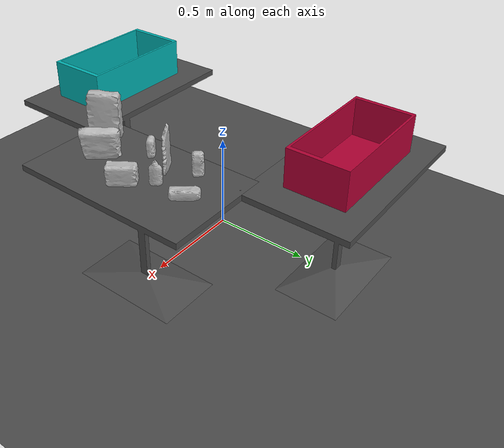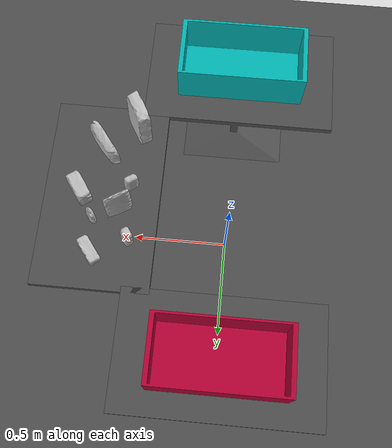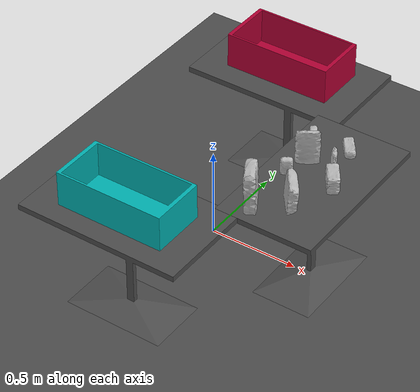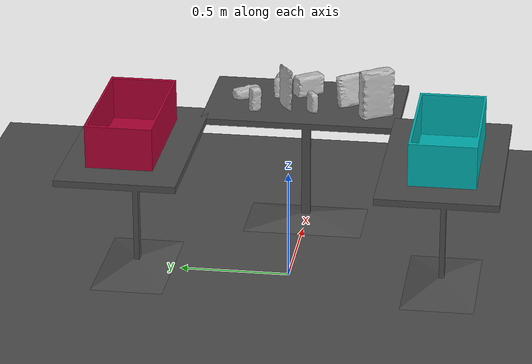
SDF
<sdf version="1.6">
 <world name="default">
  <light name="sun" type="directional">
   <pose>0 0 10 0 -0 0</pose>
   <diffuse>0.8 0.8 0.8 1</diffuse>
   <specular>0.2 0.2 0.2 1</specular>
   <attenuation>
    <range>1000</range>
    <constant>0.9</constant>
    <linear>0.01</linear>
    <quadratic>0.001</quadratic>
   </attenuation>
   <direction>-0.5 0.1 -0.9</direction>
  </light>
  <model name="ground_plane">
   <static>1</static>
   <link name="link">
    <collision name="collision">
     <geometry><plane><normal>0 0 1</normal><size>100 100</size></plane></geometry>
     <surface><friction><ode><mu>100</mu><mu2>50</mu2></ode></friction></surface>
    </collision>
    <visual name="visual">
     <cast_shadows>0</cast_shadows>
     <geometry><plane><normal>0 0 1</normal><size>100 100</size></plane></geometry>
     <material>
      <script><uri>file://media/materials/scripts/gazebo.material</uri><name>Gazebo/DarkGrey</name></script>
     </material>
    </visual>
   </link>
  </model>
  <gravity>0 0 -9.8</gravity>
  <magnetic_field>6e-06 2.3e-05 -4.2e-05</magnetic_field>
  <atmosphere type="adiabatic"/>
  <physics name="default_physics" default="0" type="ode">
   <max_step_size>0.001</max_step_size>
   <real_time_factor>1</real_time_factor>
   <real_time_update_rate>1000</real_time_update_rate>
  </physics>
  <scene><ambient>0.4 0.4 0.4 1</ambient><background>0.7 0.7 0.7 1</background><shadows>1</shadows></scene>
  <spherical_coordinates>
   <surface_model>EARTH_WGS84</surface_model>
   <latitude_deg>0</latitude_deg>
   <longitude_deg>0</longitude_deg>
   <elevation>0</elevation>
   <heading_deg>0</heading_deg>
  </spherical_coordinates>
  <model name="dropbox">
   <link name="link_0">
    <pose>0 -0 0 0 0 -1.56873</pose>
    <inertial>
     <mass>1</mass>
     <inertia>
      <ixx>0.166667</ixx>
      <ixy>0</ixy>
      <ixz>0</ixz>
      <iyy>0.166667</iyy>
      <iyz>0</iyz>
      <izz>0.166667</izz>
     </inertia>
    </inertial>
    <visual name="visual">
     <geometry><mesh><uri>model://dropbox/meshes/dropbox.dae</uri><scale>1 1 1</scale></mesh></geometry>
     <material>
      <lighting>1</lighting>
      <script><uri>file://media/materials/scripts/gazebo.material</uri><name>Gazebo/Grey</name></script>
      <ambient>0 0.3 0.3 1</ambient>
      <diffuse>0 0.7 0.7 1</diffuse>
      <specular>0 0.01 0.01 1</specular>
      <emissive>0 0 0 1</emissive>
     </material>
    </visual>
    <collision name="collision">
     <geometry><mesh><uri>model://dropbox/meshes/dropbox.dae</uri><scale>1 1 1</scale></mesh></geometry>
     <surface>
      <friction>
       <ode><mu>1</mu><mu2>1</mu2><fdir1>0 0 0</fdir1><slip1>0</slip1><slip2>0</slip2></ode>
       <torsional>
        <coefficient>1</coefficient>
        <patch_radius>0</patch_radius>
        <surface_radius>0</surface_radius>
        <use_patch_radius>1</use_patch_radius>
        <ode><slip>0</slip></ode>
       </torsional>
      </friction>
      <bounce><restitution_coefficient>0</restitution_coefficient><threshold>1e+06</threshold></bounce>
      <contact>
       <collide_without_contact>0</collide_without_contact>
       <collide_without_contact_bitmask>1</collide_without_contact_bitmask>
       <collide_bitmask>1</collide_bitmask>
       <ode>
        <soft_cfm>0</soft_cfm>
        <soft_erp>0.2</soft_erp>
        <kp>1e+13</kp>
        <kd>1</kd>
        <max_vel>0.01</max_vel>
        <min_depth>0</min_depth>
       </ode>
       <bullet>
        <split_impulse>1</split_impulse>
        <split_impulse_penetration_threshold>-0.01</split_impulse_penetration_threshold>
        <soft_cfm>0</soft_cfm>
        <soft_erp>0.2</soft_erp>
        <kp>1e+13</kp>
        <kd>1</kd>
       </bullet>
      </contact>
     </surface>
    </collision>
   </link>
   <static>1</static>
   <pose>0 -0.71 0.605 0 -0 0</pose>
  </model>
  <model name="dropbox_clone">
   <link name="link_0">
    <pose>0 -0 0 0 0 -1.56873</pose>
    <inertial>
     <mass>1</mass>
     <inertia>
      <ixx>0.166667</ixx>
      <ixy>0</ixy>
      <ixz>0</ixz>
      <iyy>0.166667</iyy>
      <iyz>0</iyz>
      <izz>0.166667</izz>
     </inertia>
    </inertial>
    <visual name="visual">
     <geometry><mesh><uri>model://dropbox/meshes/dropbox.dae</uri><scale>1 1 1</scale></mesh></geometry>
     <material>
      <lighting>1</lighting>
      <script><uri>file://media/materials/scripts/gazebo.material</uri><name>Gazebo/Grey</name></script>
      <ambient>0.3 0 0.1 1</ambient>
      <diffuse>0.7 0 0.2 1</diffuse>
      <specular>0.01 0 0.01 1</specular>
      <emissive>0 0 0 1</emissive>
     </material>
    </visual>
    <collision name="collision">
     <geometry><mesh><uri>model://dropbox/meshes/dropbox.dae</uri><scale>1 1 1</scale></mesh></geometry>
     <surface>
      <friction>
       <ode><mu>1</mu><mu2>1</mu2><fdir1>0 0 0</fdir1><slip1>0</slip1><slip2>0</slip2></ode>
       <torsional>
        <coefficient>1</coefficient>
        <patch_radius>0</patch_radius>
        <surface_radius>0</surface_radius>
        <use_patch_radius>1</use_patch_radius>
        <ode><slip>0</slip></ode>
       </torsional>
      </friction>
      <bounce><restitution_coefficient>0</restitution_coefficient><threshold>1e+06</threshold></bounce>
      <contact>
       <collide_without_contact>0</collide_without_contact>
       <collide_without_contact_bitmask>1</collide_without_contact_bitmask>
       <collide_bitmask>1</collide_bitmask>
       <ode>
        <soft_cfm>0</soft_cfm>
        <soft_erp>0.2</soft_erp>
        <kp>1e+13</kp>
        <kd>1</kd>
        <max_vel>0.01</max_vel>
        <min_depth>0</min_depth>
       </ode>
       <bullet>
        <split_impulse>1</split_impulse>
        <split_impulse_penetration_threshold>-0.01</split_impulse_penetration_threshold>
        <soft_cfm>0</soft_cfm>
        <soft_erp>0.2</soft_erp>
        <kp>1e+13</kp>
        <kd>1</kd>
       </bullet>
      </contact>
     </surface>
    </collision>
   </link>
   <static>1</static>
   <pose>0 0.71 0.605 0 -0 0</pose>
  </model>
  <model name="short_table">
   <link name="link_0">
    <inertial>
     <mass>1</mass>
     <inertia>
      <ixx>0.166667</ixx>
      <ixy>0</ixy>
      <ixz>0</ixz>
      <iyy>0.166667</iyy>
      <iyz>0</iyz>
      <izz>0.166667</izz>
     </inertia>
    </inertial>
    <visual name="visual">
     <geometry><mesh><uri>model://short_table/meshes/short_table.dae</uri><scale>1 1 1</scale></mesh></geometry>
     <material>
      <lighting>1</lighting>
      <script><uri>file://media/materials/scripts/gazebo.material</uri><name>Gazebo/DarkGray</name></script>
     </material>
    </visual>
    <collision name="collision">
     <geometry><mesh><uri>model://short_table/meshes/short_table.dae</uri><scale>1 1 1</scale></mesh></geometry>
     <surface>
      <friction>
       <ode><mu>1</mu><mu2>1</mu2><fdir1>0 0 0</fdir1><slip1>0</slip1><slip2>0</slip2></ode>
       <torsional>
        <coefficient>1</coefficient>
        <patch_radius>0</patch_radius>
        <surface_radius>0</surface_radius>
        <use_patch_radius>1</use_patch_radius>
        <ode><slip>0</slip></ode>
       </torsional>
      </friction>
      <bounce><restitution_coefficient>0</restitution_coefficient><threshold>1e+06</threshold></bounce>
      <contact>
       <collide_without_contact>0</collide_without_contact>
       <collide_without_contact_bitmask>1</collide_without_contact_bitmask>
       <collide_bitmask>1</collide_bitmask>
       <ode>
        <soft_cfm>0</soft_cfm>
        <soft_erp>0.2</soft_erp>
        <kp>1e+13</kp>
        <kd>1</kd>
        <max_vel>0.01</max_vel>
        <min_depth>0</min_depth>
       </ode>
       <bullet>
        <split_impulse>1</split_impulse>
        <split_impulse_penetration_threshold>-0.01</split_impulse_penetration_threshold>
        <soft_cfm>0</soft_cfm>
        <soft_erp>0.2</soft_erp>
        <kp>1e+13</kp>
        <kd>1</kd>
       </bullet>
      </contact>
     </surface>
    </collision>
   </link>
   <static>1</static>
   <pose>0.6 0 0 0 -0 0</pose>
  </model>
  <model name="short_table_clone">
   <link name="link_0">
    <inertial>
     <mass>1</mass>
     <inertia>
      <ixx>0.166667</ixx>
      <ixy>0</ixy>
      <ixz>0</ixz>
      <iyy>0.166667</iyy>
      <iyz>0</iyz>
      <izz>0.166667</izz>
     </inertia>
    </inertial>
    <visual name="visual">
     <geometry><mesh><uri>model://short_table/meshes/short_table.dae</uri><scale>1 1 1</scale></mesh></geometry>
     <material>
      <lighting>1</lighting>
      <script><uri>file://media/materials/scripts/gazebo.material</uri><name>Gazebo/DarkGray</name></script>
     </material>
    </visual>
    <collision name="collision">
     <geometry><mesh><uri>model://short_table/meshes/short_table.dae</uri><scale>1 1 1</scale></mesh></geometry>
     <surface>
      <friction>
       <ode><mu>1</mu><mu2>1</mu2><fdir1>0 0 0</fdir1><slip1>0</slip1><slip2>0</slip2></ode>
       <torsional>
        <coefficient>1</coefficient>
        <patch_radius>0</patch_radius>
        <surface_radius>0</surface_radius>
        <use_patch_radius>1</use_patch_radius>
        <ode><slip>0</slip></ode>
       </torsional>
      </friction>
      <bounce><restitution_coefficient>0</restitution_coefficient><threshold>1e+06</threshold></bounce>
      <contact>
       <collide_without_contact>0</collide_without_contact>
       <collide_without_contact_bitmask>1</collide_without_contact_bitmask>
       <collide_bitmask>1</collide_bitmask>
       <ode>
        <soft_cfm>0</soft_cfm>
        <soft_erp>0.2</soft_erp>
        <kp>1e+13</kp>
        <kd>1</kd>
        <max_vel>0.01</max_vel>
        <min_depth>0</min_depth>
       </ode>
       <bullet>
        <split_impulse>1</split_impulse>
        <split_impulse_penetration_threshold>-0.01</split_impulse_penetration_threshold>
        <soft_cfm>0</soft_cfm>
        <soft_erp>0.2</soft_erp>
        <kp>1e+13</kp>
        <kd>1</kd>
       </bullet>
      </contact>
     </surface>
    </collision>
   </link>
   <static>1</static>
   <pose>0 -0.7 0 0 -0 1.57</pose>
  </model>
  <model name="short_table_clone_0">
   <link name="link_0">
    <inertial>
     <mass>1</mass>
     <inertia>
      <ixx>0.166667</ixx>
      <ixy>0</ixy>
      <ixz>0</ixz>
      <iyy>0.166667</iyy>
      <iyz>0</iyz>
      <izz>0.166667</izz>
     </inertia>
    </inertial>
    <visual name="visual">
     <geometry><mesh><uri>model://short_table/meshes/short_table.dae</uri><scale>1 1 1</scale></mesh></geometry>
     <material>
      <lighting>1</lighting>
      <script><uri>file://media/materials/scripts/gazebo.material</uri><name>Gazebo/DarkGray</name></script>
     </material>
    </visual>
    <collision name="collision">
     <geometry><mesh><uri>model://short_table/meshes/short_table.dae</uri><scale>1 1 1</scale></mesh></geometry>
     <surface>
      <friction>
       <ode><mu>1</mu><mu2>1</mu2><fdir1>0 0 0</fdir1><slip1>0</slip1><slip2>0</slip2></ode>
       <torsional>
        <coefficient>1</coefficient>
        <patch_radius>0</patch_radius>
        <surface_radius>0</surface_radius>
        <use_patch_radius>1</use_patch_radius>
        <ode><slip>0</slip></ode>
       </torsional>
      </friction>
      <bounce><restitution_coefficient>0</restitution_coefficient><threshold>1e+06</threshold></bounce>
      <contact>
       <collide_without_contact>0</collide_without_contact>
       <collide_without_contact_bitmask>1</collide_without_contact_bitmask>
       <collide_bitmask>1</collide_bitmask>
       <ode>
        <soft_cfm>0</soft_cfm>
        <soft_erp>0.2</soft_erp>
        <kp>1e+13</kp>
        <kd>1</kd>
        <max_vel>0.01</max_vel>
        <min_depth>0</min_depth>
       </ode>
       <bullet>
        <split_impulse>1</split_impulse>
        <split_impulse_penetration_threshold>-0.01</split_impulse_penetration_threshold>
        <soft_cfm>0</soft_cfm>
        <soft_erp>0.2</soft_erp>
        <kp>1e+13</kp>
        <kd>1</kd>
       </bullet>
      </contact>
     </surface>
    </collision>
   </link>
   <static>1</static>
   <pose>0 0.7 0 0 -0 1.57</pose>
  </model>
  <model name="biscuits">
   <link name="biscuits_link">
    <inertial>
     <mass>0.1</mass>
     <inertia><ixx>1</ixx><ixy>0</ixy><ixz>0</ixz><iyy>1</iyy><iyz>0</iyz><izz>1</izz></inertia>
    </inertial>
    <visual name="biscuits_visual">
     <material>
      <script>
       <uri>model://biscuits/materials/scripts</uri>
       <uri>model://biscuits/materials/textures</uri>
       <name>biscuits</name>
      </script>
     </material>
     <geometry><mesh><uri>model://biscuits/meshes/biscuits.dae</uri></mesh></geometry>
    </visual>
    <collision name="biscuits_collision">
     <pose>0.015 0.01 0.075 0 -0 2.2</pose>
     <geometry><box><size>0.19 0.06 0.15</size></box></geometry>
    </collision>
   </link>
   <pose>0.590002 -0.230002 0.609995 1e-06 -3e-06 -5e-06</pose>
  </model>
  <model name="book">
   <link name="book_link">
    <inertial>
     <mass>0.08</mass>
     <inertia><ixx>1</ixx><ixy>0</ixy><ixz>0</ixz><iyy>1</iyy><iyz>0</iyz><izz>1</izz></inertia>
    </inertial>
    <visual name="book_visual">
     <material>
      <script>
       <uri>model://book/materials/scripts</uri>
       <uri>model://book/materials/textures</uri>
       <name>book</name>
      </script>
     </material>
     <geometry><mesh><uri>model://book/meshes/book.dae</uri></mesh></geometry>
    </visual>
    <collision name="book_collision">
     <pose>0 0 0.103 0 -0 2.3</pose>
     <geometry><box><size>0.13 0.02 0.206</size></box></geometry>
    </collision>
   </link>
   <pose>0.5 0.08 0.609992 3e-06 -1e-06 -1.76</pose>
  </model>
  <model name="glue">
   <link name="glue_link">
    <inertial>
     <mass>0.08</mass>
     <inertia><ixx>1</ixx><ixy>0</ixy><ixz>0</ixz><iyy>1</iyy><iyz>0</iyz><izz>1</izz></inertia>
    </inertial>
    <visual name="glue_visual">
     <material>
      <script>
       <uri>model://glue/materials/scripts</uri>
       <uri>model://glue/materials/textures</uri>
       <name>glue</name>
      </script>
     </material>
     <geometry><mesh><uri>model://glue/meshes/glue.dae</uri></mesh></geometry>
    </visual>
    <collision name="glue_collision">
     <pose>0 0 0.067 0 0 -0.95</pose>
     <geometry><box><size>0.054 0.032 0.133</size></box></geometry>
    </collision>
   </link>
   <pose>0.619888 0.130072 0.6095 0.000155 0.000105 -0.000127</pose>
  </model>
  <model name="soap">
   <link name="soap_link">
    <inertial>
     <mass>0.08</mass>
     <inertia><ixx>1</ixx><ixy>0</ixy><ixz>0</ixz><iyy>1</iyy><iyz>0</iyz><izz>1</izz></inertia>
    </inertial>
    <visual name="soap_visual">
     <material>
      <script>
       <uri>model://soap/materials/scripts</uri>
       <uri>model://soap/materials/textures</uri>
       <name>soap</name>
      </script>
     </material>
     <geometry><mesh><uri>model://soap/meshes/soap.dae</uri></mesh></geometry>
    </visual>
    <collision name="soap_collision">
     <pose>0.02 0.002 0.05 0 0 -1.05</pose>
     <geometry><box><size>0.14 0.065 0.1</size></box></geometry>
    </collision>
   </link>
   <pose>0.68 0 0.61 2e-06 -4e-06 0.1</pose>
  </model>
  <model name="soap2">
   <link name="soap2_link">
    <inertial>
     <mass>0.08</mass>
     <inertia><ixx>1</ixx><ixy>0</ixy><ixz>0</ixz><iyy>1</iyy><iyz>0</iyz><izz>1</izz></inertia>
    </inertial>
    <visual name="soap2_visual">
     <material>
      <script>
       <uri>model://soap2/materials/scripts</uri>
       <uri>model://soap2/materials/textures</uri>
       <name>soap2</name>
      </script>
     </material>
     <geometry><mesh><uri>model://soap2/meshes/soap2.dae</uri></mesh></geometry>
    </visual>
    <collision name="soap2_collision">
     <pose>-0.002 0.00502 0.05 0 0 -1</pose>
     <geometry><box><size>0.065 0.04 0.105</size></box></geometry>
    </collision>
   </link>
   <pose>0.460001 -0.049999 0.612493 -2e-05 2.1e-05 -1.57</pose>
  </model>
  <model name="sticky_notes">
   <link name="sticky_notes_link">
    <inertial>
     <mass>0.08</mass>
     <inertia><ixx>1</ixx><ixy>0</ixy><ixz>0</ixz><iyy>1</iyy><iyz>0</iyz><izz>1</izz></inertia>
    </inertial>
    <visual name="sticky_notes_visual">
     <material>
      <script>
       <uri>model://sticky_notes/materials/scripts</uri>
       <uri>model://sticky_notes/materials/textures</uri>
       <name>sticky_notes</name>
      </script>
     </material>
     <geometry><mesh><uri>model://sticky_notes/meshes/sticky_notes.dae</uri></mesh></geometry>
    </visual>
    <collision name="sticky_notes_collision">
     <pose>0 0 0.06 0 -0 0.68</pose>
     <geometry><box><size>0.043 0.055 0.12</size></box></geometry>
    </collision>
   </link>
   <pose>0.449998 0.22 0.609998 -3e-06 -8e-06 0</pose>
  </model>
  <model name="eraser">
   <link name="eraser_link">
    <inertial>
     <mass>0.1</mass>
     <inertia><ixx>1</ixx><ixy>0</ixy><ixz>0</ixz><iyy>1</iyy><iyz>0</iyz><izz>1</izz></inertia>
    </inertial>
    <visual name="eraser_visual">
     <material>
      <script>
       <uri>model://eraser/materials/scripts</uri>
       <uri>model://eraser/materials/textures</uri>
       <name>eraser</name>
      </script>
     </material>
     <geometry><mesh><uri>model://eraser/meshes/eraser.dae</uri></mesh></geometry>
    </visual>
    <collision name="eraser_collision">
     <pose>0.02 0.02 0.02 0 0 -0.95</pose>
     <geometry><box><size>0.135 0.06 0.05</size></box></geometry>
    </collision>
   </link>
   <pose>0.599997 0.265533 0.615001 0.000277 -0.00046 -3e-06</pose>
  </model>
  <model name="snacks">
   <link name="snacks_link">
    <inertial>
     <mass>0.08</mass>
     <inertia><ixx>1</ixx><ixy>0</ixy><ixz>0</ixz><iyy>1</iyy><iyz>0</iyz><izz>1</izz></inertia>
    </inertial>
    <visual name="snacks_visual">
     <material>
      <script>
       <uri>model://snacks/materials/scripts</uri>
       <uri>model://snacks/materials/textures</uri>
       <name>snacks</name>
      </script>
     </material>
     <geometry><mesh><uri>model://snacks/meshes/snacks.dae</uri></mesh></geometry>
    </visual>
    <collision name="snacks_collision">
     <pose>0.04 0.02 0.117 0 -0 2.1</pose>
     <geometry><box><size>0.165 0.06 0.235</size></box></geometry>
    </collision>
   </link>
   <pose>0.417592 -0.361158 0.610019 0.016313 -0.027885 -0.000227</pose>
  </model>
 </world>
</sdf>
